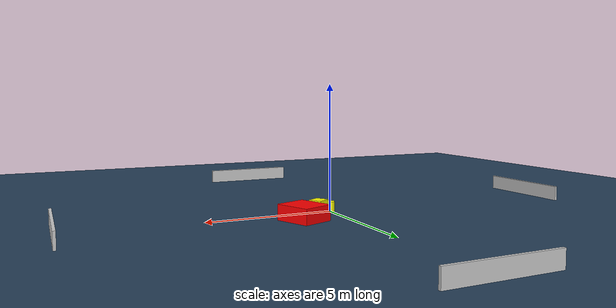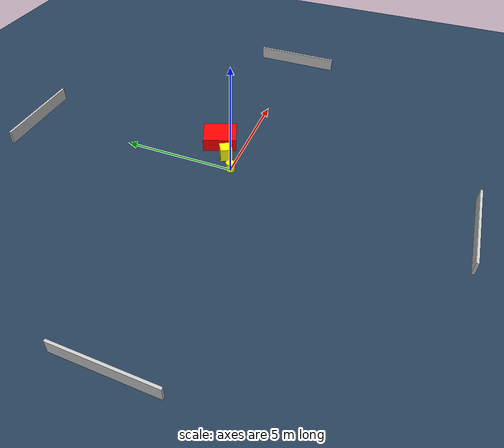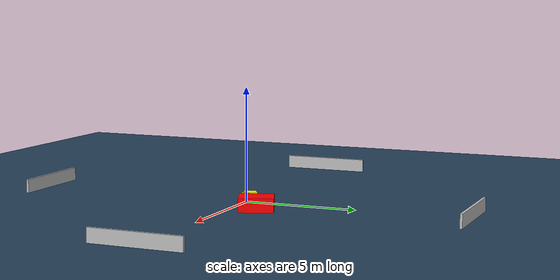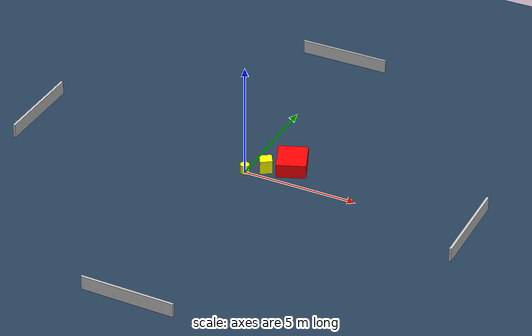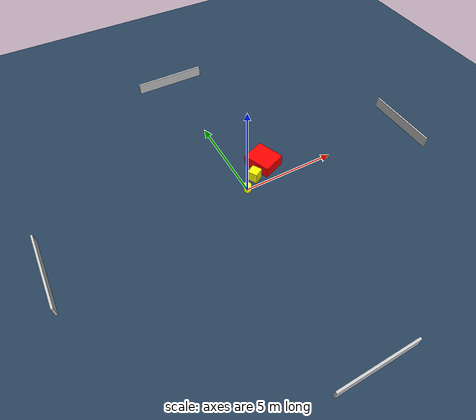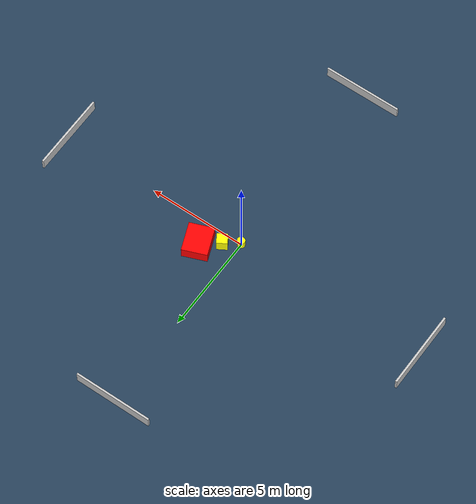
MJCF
<?xml version="1.0" ?>
<mujoco model="generated_environment">
  <option timestep="0.01" integrator="RK4" cone="elliptic"/>
  <default>
    <geom density="1"/>
  </default>
  <asset>
    <texture builtin="gradient" height="3072" name="skybox" rgb1="0.3 0.5 0.7" rgb2="0 0 0" type="skybox" width="512"/>
    <texture builtin="checker" height="300" name="groundplane" rgb1="0.2 0.3 0.4" rgb2="0.1 0.2 0.3" type="2d" width="300"/>
    <material name="groundplane" reflectance="0.2" texrepeat="5 5" texture="groundplane"/>
  </asset>
  <worldbody>
    <light dir="0 0 -1" directional="true" pos="0 0 1.5"/>
    <geom condim="3" friction="0.5 0.005 0.001" material="groundplane" name="floor" pos="0 0 0" size="0 0 0.05" type="plane"/>
    <body name="walls">
      <geom name="wall_1" condim="4" pos="-10.0 0.0 0.3" rgba="0.800000011920929 0.800000011920929 0.800000011920929 1.0" size="0.05 2.0 0.3" type="box"/>
      <geom name="wall_2" condim="4" pos="10.0 0.0 0.3" rgba="0.800000011920929 0.800000011920929 0.800000011920929 1.0" size="0.05 2.0 0.3" type="box"/>
      <geom name="wall_3" condim="4" pos="0.0 -10.0 0.3" rgba="0.800000011920929 0.800000011920929 0.800000011920929 1.0" size="2.0 0.05 0.3" type="box"/>
      <geom name="wall_4" condim="4" pos="0.0 10.0 0.3" rgba="0.800000011920929 0.800000011920929 0.800000011920929 1.0" size="2.0 0.05 0.3" type="box"/>
    </body>
    <body name="robot">
      <joint name="joint_x" type="slide" pos="0 0 0" axis="1 0 0"/>
      <joint name="joint_y" type="slide" pos="0 0 0" axis="0 1 0"/>
      <geom name="robot" type="cylinder" pos="0.0 0.0 0.2" size="0.2 0.2 0.0" mass="5.0" friction="1.0 0.005 0.0001" condim="4" rgba="1.0 1.0 0.0 1.0"/>
    </body>
    <body name="obstacle_1_movable">
      <geom name="obstacle_1_movable" condim="4" pos="0.715606894330001 0.5133578164452893 0.3" euler="0 0 120.45459100640865" friction="0.0 0.005 0.001" rgba="1.0 1.0 0.0 1.0" size="0.2617630706696367 0.2669598999420694 0.3" type="box" mass="0.1"/>
      <joint type="free"/>
    </body>
    <body name="obstacle_2_static">
      <geom name="obstacle_2_static" condim="4" pos="1.614880036350064 1.1705419153677052 0.3" euler="0 0 111.406986821071" friction="0.0 0.005 0.001" rgba="1.0 0.0 0.0 1.0" size="0.7478821605016643 0.6327033655209939 0.3" type="box"/>
    </body>
  </worldbody>
  <actuator>
    <motor name="actuator_x" joint="joint_x" gear="1" ctrlrange="-1 1"/>
    <motor name="actuator_y" joint="joint_y" gear="1" ctrlrange="-1 1"/>
  </actuator>
</mujoco>
